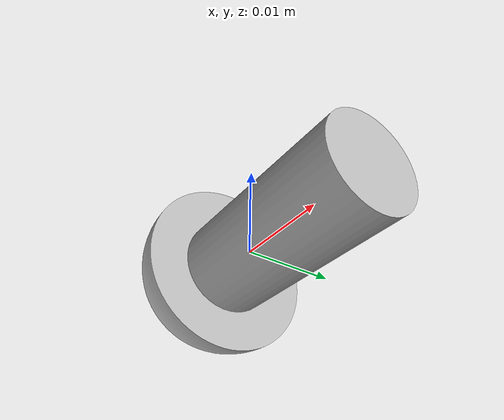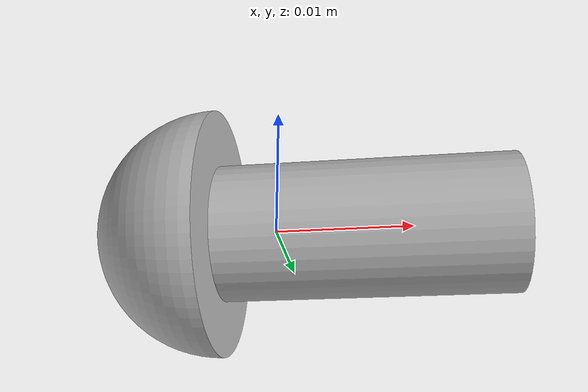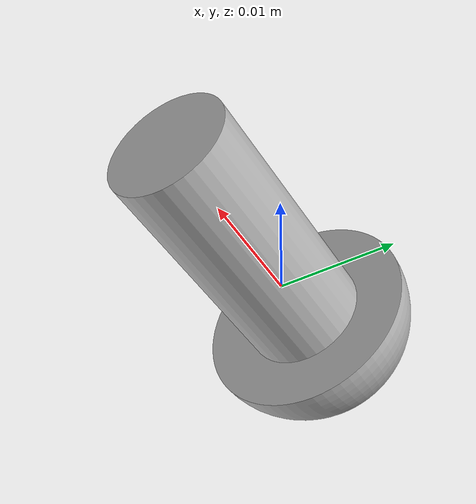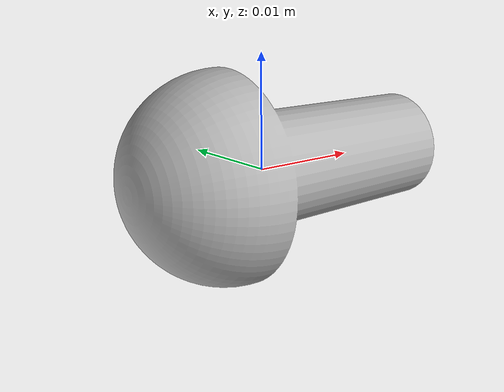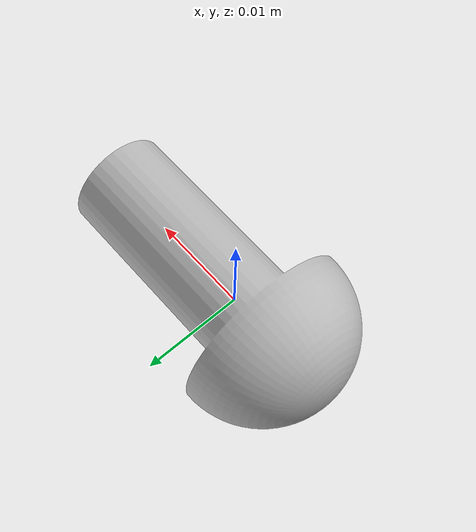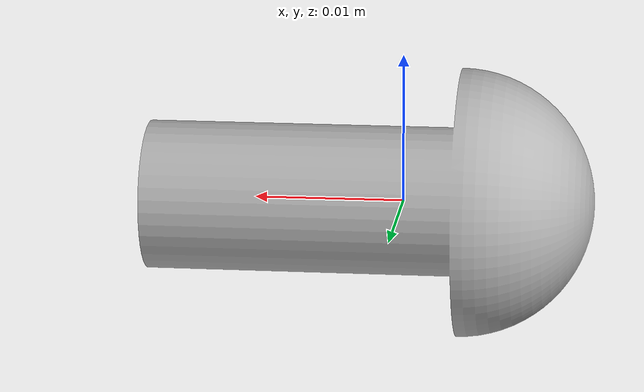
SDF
<?xml version="1.0" ?>
<sdf version="1.6">
  <model name="6)Holder">
    <static>true</static>
    <link name="link">
      <collision name="collision">
        <geometry>
          <mesh>
            <scale>0.001 0.001 0.001</scale>
            <uri>model://6)Holder/6)Holder.stl</uri>
          </mesh>
        </geometry>
      </collision>
      <visual name="visual">
        <geometry>
          <mesh>
            <scale>0.001 0.001 0.001</scale>
            <uri>model://6)Holder/6)Holder.dae</uri>
          </mesh>
        </geometry>
      </visual>
    </link>
  </model>
</sdf>
